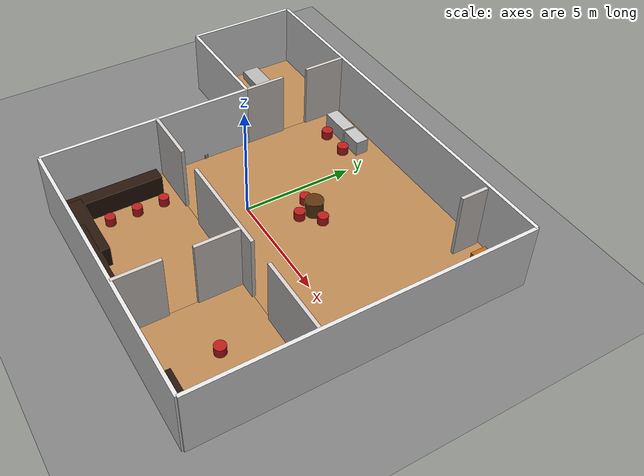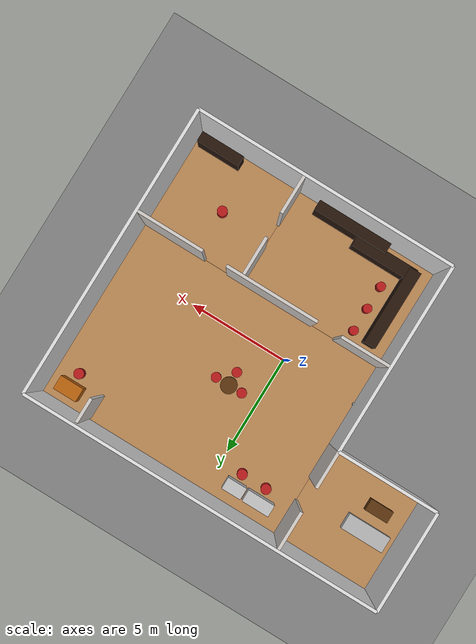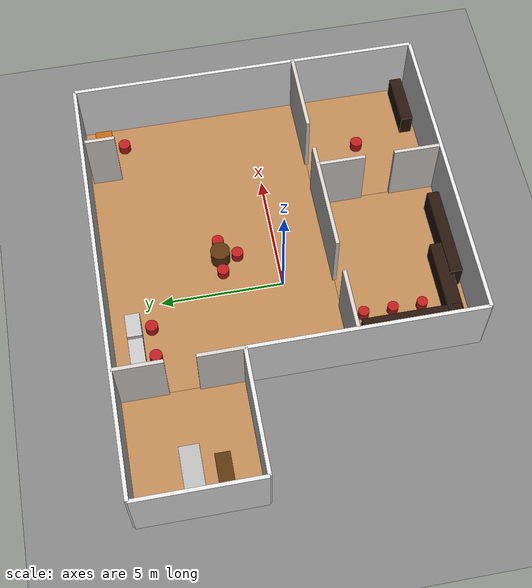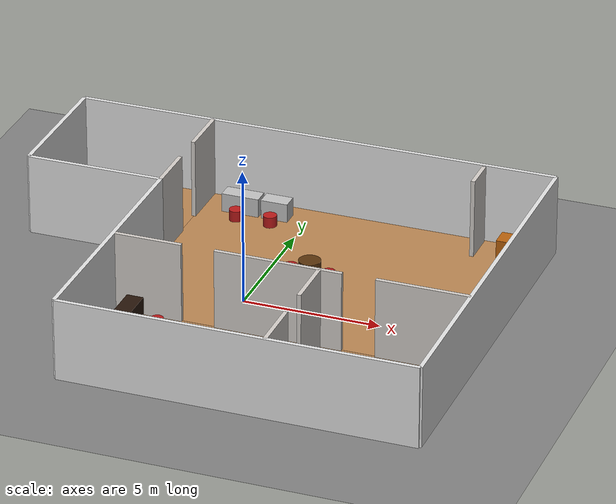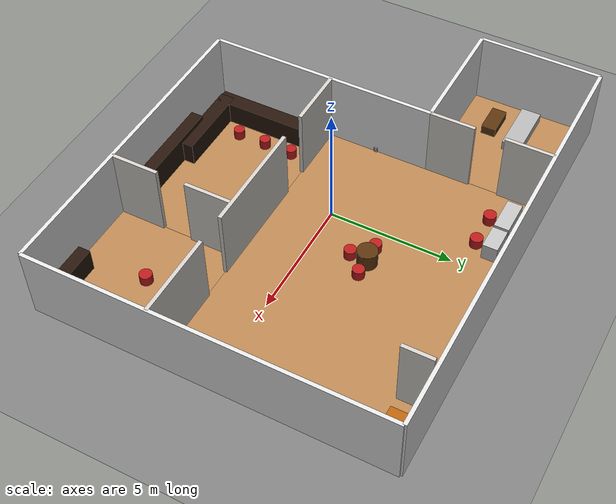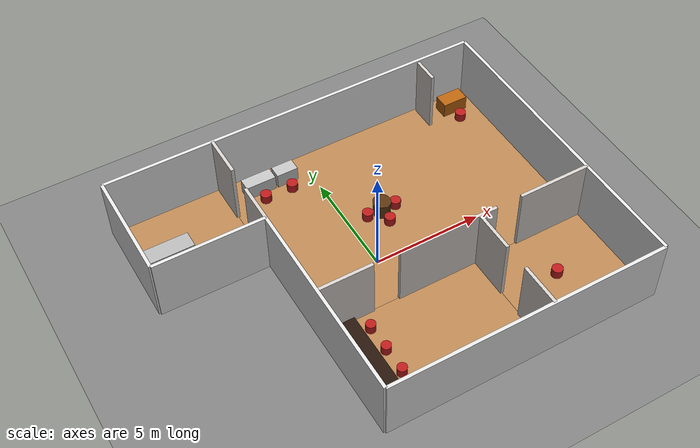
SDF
<?xml version='1.0' encoding='utf-8'?>
<sdf version="1.6">
  <world name="office_building">

    <physics name="1ms" type="ignored">
      <max_step_size>0.005</max_step_size>
      <real_time_factor>1.0</real_time_factor>
      <real_time_update_rate>200</real_time_update_rate>
    </physics>

    <plugin name="gz::sim::systems::Physics" filename="gz-sim-physics-system" />
    <plugin name="gz::sim::systems::UserCommands" filename="gz-sim-user-commands-system" />
    <plugin name="gz::sim::systems::SceneBroadcaster" filename="gz-sim-scene-broadcaster-system" />
    <plugin name="gz::sim::systems::Sensors" filename="gz-sim-sensors-system">
      <render_engine>ogre2</render_engine>
    </plugin>
    <plugin name="gz::sim::systems::Imu" filename="gz-sim-imu-system" />
    <gravity>0 0 -9.8</gravity>

    <light name="sun" type="directional">
      <cast_shadows>true</cast_shadows>
      <pose>0 0 10 0 -0.5 0.1</pose>
      <diffuse>0.9 0.9 0.9 1</diffuse>
      <specular>0.2 0.2 0.2 1</specular>
      <attenuation>
        <range>1000</range>
        <constant>0.9</constant>
        <linear>0.01</linear>
        <quadratic>0.001</quadratic>
      </attenuation>
      <direction>-0.5 0.5 -1</direction>
    </light>

    <scene>
      <ambient>0.4 0.4 0.4 1</ambient>
      <background>0.72 0.78 0.86 1</background>
      <shadows>true</shadows>
    </scene>

    <model name="ground_plane">
      <static>true</static>
      <pose>0 0 0 0 0 0</pose>
      <link name="link">
        <collision name="collision">
          <geometry>
            <plane>
              <normal>0 0 1</normal>
              <size>50 50</size>
            </plane>
          </geometry>
        </collision>
        <visual name="visual">
          <geometry>
            <plane>
              <normal>0 0 1</normal>
              <size>50 50</size>
            </plane>
          </geometry>
          <material>
            <ambient>0.5 0.5 0.5 1</ambient>
            <diffuse>0.5 0.5 0.5 1</diffuse>
          </material>
        </visual>
      </link>
    </model>

    <model name="floor_main_hall">
      <static>true</static>
      <pose> 2.5000 2.5500 0.025 0 0 0 </pose>
      <link name="link">
        <collision name="collision">
          <geometry>
            <box>
              <size>12.85 9.27 0.05</size>
            </box>
          </geometry>
        </collision>
        <visual name="visual">
          <geometry>
            <box>
              <size>12.85 9.27 0.05</size>
            </box>
          </geometry>
          <material>
            <ambient>0.72 0.52 0.32 1</ambient>
            <diffuse>0.72 0.52 0.32 1</diffuse>
          </material>
        </visual>
      </link>
    </model>

    <model name="floor_left_room">
      <static>true</static>
      <pose> -6.4250 4.6850 0.025 0 0 0 </pose>
      <link name="link">
        <collision name="collision">
          <geometry>
            <box>
              <size>5.0 5.0 0.05</size>
            </box>
          </geometry>
        </collision>
        <visual name="visual">
          <geometry>
            <box>
              <size>5.0 5.0 0.05</size>
            </box>
          </geometry>
          <material>
            <ambient>0.72 0.52 0.32 1</ambient>
            <diffuse>0.72 0.52 0.32 1</diffuse>
          </material>
        </visual>
      </link>
    </model>

    <model name="floor_lower_left">
      <static>true</static>
      <pose> -0.1850 -4.6350 0.025 0 0 0 </pose>
      <link name="link">
        <collision name="collision">
          <geometry>
            <box>
              <size>7.48 5.1 0.05</size>
            </box>
          </geometry>
        </collision>
        <visual name="visual">
          <geometry>
            <box>
              <size>7.48 5.1 0.05</size>
            </box>
          </geometry>
          <material>
            <ambient>0.72 0.52 0.32 1</ambient>
            <diffuse>0.72 0.52 0.32 1</diffuse>
          </material>
        </visual>
      </link>
    </model>

    <model name="floor_lower_right">
      <static>true</static>
      <pose> 6.2400 -4.6350 0.025 0 0 0 </pose>
      <link name="link">
        <collision name="collision">
          <geometry>
            <box>
              <size>5.37 5.1 0.05</size>
            </box>
          </geometry>
        </collision>
        <visual name="visual">
          <geometry>
            <box>
              <size>5.37 5.1 0.05</size>
            </box>
          </geometry>
          <material>
            <ambient>0.72 0.52 0.32 1</ambient>
            <diffuse>0.72 0.52 0.32 1</diffuse>
          </material>
        </visual>
      </link>
    </model>

    <model name="wall_outer_north">
      <static>true</static>
      <pose> 0.0000 7.1850 1.5 0 0 0 </pose>
      <link name="link">
        <collision name="collision">
          <geometry>
            <box>
              <size>17.85 0.15 3.0</size>
            </box>
          </geometry>
        </collision>
        <visual name="visual">
          <geometry>
            <box>
              <size>17.85 0.15 3.0</size>
            </box>
          </geometry>
          <material>
            <ambient>0.88 0.88 0.88 1</ambient>
            <diffuse>0.88 0.88 0.88 1</diffuse>
          </material>
        </visual>
      </link>
    </model>

    <model name="wall_outer_east">
      <static>true</static>
      <pose> 8.9250 0.0000 1.5 0 0 0 </pose>
      <link name="link">
        <collision name="collision">
          <geometry>
            <box>
              <size>0.15 14.37 3.0</size>
            </box>
          </geometry>
        </collision>
        <visual name="visual">
          <geometry>
            <box>
              <size>0.15 14.37 3.0</size>
            </box>
          </geometry>
          <material>
            <ambient>0.88 0.88 0.88 1</ambient>
            <diffuse>0.88 0.88 0.88 1</diffuse>
          </material>
        </visual>
      </link>
    </model>

    <model name="wall_outer_south">
      <static>true</static>
      <pose> 2.5000 -7.1850 1.5 0 0 0 </pose>
      <link name="link">
        <collision name="collision">
          <geometry>
            <box>
              <size>12.85 0.15 3.0</size>
            </box>
          </geometry>
        </collision>
        <visual name="visual">
          <geometry>
            <box>
              <size>12.85 0.15 3.0</size>
            </box>
          </geometry>
          <material>
            <ambient>0.88 0.88 0.88 1</ambient>
            <diffuse>0.88 0.88 0.88 1</diffuse>
          </material>
        </visual>
      </link>
    </model>

    <model name="wall_outer_west_left_room">
      <static>true</static>
      <pose> -8.9250 4.6850 1.5 0 0 0 </pose>
      <link name="link">
        <collision name="collision">
          <geometry>
            <box>
              <size>0.15 5.0 3.0</size>
            </box>
          </geometry>
        </collision>
        <visual name="visual">
          <geometry>
            <box>
              <size>0.15 5.0 3.0</size>
            </box>
          </geometry>
          <material>
            <ambient>0.88 0.88 0.88 1</ambient>
            <diffuse>0.88 0.88 0.88 1</diffuse>
          </material>
        </visual>
      </link>
    </model>

    <model name="wall_outer_south_left_room">
      <static>true</static>
      <pose> -6.4250 2.1850 1.5 0 0 0 </pose>
      <link name="link">
        <collision name="collision">
          <geometry>
            <box>
              <size>5.0 0.15 3.0</size>
            </box>
          </geometry>
        </collision>
        <visual name="visual">
          <geometry>
            <box>
              <size>5.0 0.15 3.0</size>
            </box>
          </geometry>
          <material>
            <ambient>0.88 0.88 0.88 1</ambient>
            <diffuse>0.88 0.88 0.88 1</diffuse>
          </material>
        </visual>
      </link>
    </model>

    <model name="wall_outer_west_main">
      <static>true</static>
      <pose> -3.9250 -2.5000 1.5 0 0 0 </pose>
      <link name="link">
        <collision name="collision">
          <geometry>
            <box>
              <size>0.15 9.37 3.0</size>
            </box>
          </geometry>
        </collision>
        <visual name="visual">
          <geometry>
            <box>
              <size>0.15 9.37 3.0</size>
            </box>
          </geometry>
          <material>
            <ambient>0.88 0.88 0.88 1</ambient>
            <diffuse>0.88 0.88 0.88 1</diffuse>
          </material>
        </visual>
      </link>
    </model>

    <model name="wall_int_left_room_A">
      <static>true</static>
      <pose> -3.9250 3.1000 1.5 0 0 0 </pose>
      <link name="link">
        <collision name="collision">
          <geometry>
            <box>
              <size>0.15 1.83 3.0</size>
            </box>
          </geometry>
        </collision>
        <visual name="visual">
          <geometry>
            <box>
              <size>0.15 1.83 3.0</size>
            </box>
          </geometry>
          <material>
            <ambient>0.82 0.80 0.78 1</ambient>
            <diffuse>0.82 0.80 0.78 1</diffuse>
          </material>
        </visual>
      </link>
    </model>

    <model name="wall_int_left_room_B">
      <static>true</static>
      <pose> -3.9250 6.2000 1.5 0 0 0 </pose>
      <link name="link">
        <collision name="collision">
          <geometry>
            <box>
              <size>0.15 1.97 3.0</size>
            </box>
          </geometry>
        </collision>
        <visual name="visual">
          <geometry>
            <box>
              <size>0.15 1.97 3.0</size>
            </box>
          </geometry>
          <material>
            <ambient>0.82 0.80 0.78 1</ambient>
            <diffuse>0.82 0.80 0.78 1</diffuse>
          </material>
        </visual>
      </link>
    </model>

    <model name="wall_int_lower_seg1">
      <static>true</static>
      <pose> -2.6750 -2.0850 1.5 0 0 0 </pose>
      <link name="link">
        <collision name="collision">
          <geometry>
            <box>
              <size>2.5 0.15 3.0</size>
            </box>
          </geometry>
        </collision>
        <visual name="visual">
          <geometry>
            <box>
              <size>2.5 0.15 3.0</size>
            </box>
          </geometry>
          <material>
            <ambient>0.82 0.80 0.78 1</ambient>
            <diffuse>0.82 0.80 0.78 1</diffuse>
          </material>
        </visual>
      </link>
    </model>

    <model name="wall_int_lower_seg2">
      <static>true</static>
      <pose> 2.0750 -2.0850 1.5 0 0 0 </pose>
      <link name="link">
        <collision name="collision">
          <geometry>
            <box>
              <size>4.6 0.15 3.0</size>
            </box>
          </geometry>
        </collision>
        <visual name="visual">
          <geometry>
            <box>
              <size>4.6 0.15 3.0</size>
            </box>
          </geometry>
          <material>
            <ambient>0.82 0.80 0.78 1</ambient>
            <diffuse>0.82 0.80 0.78 1</diffuse>
          </material>
        </visual>
      </link>
    </model>

    <model name="wall_int_lower_seg3">
      <static>true</static>
      <pose> 7.2500 -2.0850 1.5 0 0 0 </pose>
      <link name="link">
        <collision name="collision">
          <geometry>
            <box>
              <size>3.35 0.15 3.0</size>
            </box>
          </geometry>
        </collision>
        <visual name="visual">
          <geometry>
            <box>
              <size>3.35 0.15 3.0</size>
            </box>
          </geometry>
          <material>
            <ambient>0.82 0.80 0.78 1</ambient>
            <diffuse>0.82 0.80 0.78 1</diffuse>
          </material>
        </visual>
      </link>
    </model>

    <model name="wall_int_lower_divider_A">
      <static>true</static>
      <pose> 3.5550 -6.2100 1.5 0 0 0 </pose>
      <link name="link">
        <collision name="collision">
          <geometry>
            <box>
              <size>0.15 1.95 3.0</size>
            </box>
          </geometry>
        </collision>
        <visual name="visual">
          <geometry>
            <box>
              <size>0.15 1.95 3.0</size>
            </box>
          </geometry>
          <material>
            <ambient>0.82 0.80 0.78 1</ambient>
            <diffuse>0.82 0.80 0.78 1</diffuse>
          </material>
        </visual>
      </link>
    </model>

    <model name="wall_int_lower_divider_B">
      <static>true</static>
      <pose> 3.5550 -3.0600 1.5 0 0 0 </pose>
      <link name="link">
        <collision name="collision">
          <geometry>
            <box>
              <size>0.15 1.95 3.0</size>
            </box>
          </geometry>
        </collision>
        <visual name="visual">
          <geometry>
            <box>
              <size>0.15 1.95 3.0</size>
            </box>
          </geometry>
          <material>
            <ambient>0.82 0.80 0.78 1</ambient>
            <diffuse>0.82 0.80 0.78 1</diffuse>
          </material>
        </visual>
      </link>
    </model>

    <model name="wall_int_right_office">
      <static>true</static>
      <pose> 6.3250 6.4250 1.5 0 0 0 </pose>
      <link name="link">
        <collision name="collision">
          <geometry>
            <box>
              <size>0.15 1.22 3.0</size>
            </box>
          </geometry>
        </collision>
        <visual name="visual">
          <geometry>
            <box>
              <size>0.15 1.22 3.0</size>
            </box>
          </geometry>
          <material>
            <ambient>0.82 0.80 0.78 1</ambient>
            <diffuse>0.82 0.80 0.78 1</diffuse>
          </material>
        </visual>
      </link>
    </model>

    <model name="desk_reception">
      <static>true</static>

      <pose> -2.4250 6.2150 0.38 0 0 0 </pose>
      <link name="link">
        <collision name="collision">
          <geometry>
            <box>
              <size>1.4 0.6 0.75</size>
            </box>
          </geometry>
        </collision>
        <visual name="visual">
          <geometry>
            <box>
              <size>1.4 0.6 0.75</size>
            </box>
          </geometry>
          <material>
            <ambient>0.75 0.75 0.75 1</ambient>
            <diffuse>0.75 0.75 0.75 1</diffuse>
          </material>
        </visual>
      </link>
    </model>

    <model name="chair_reception">
      <static>true</static>
      <pose> -2.4250 5.5150 0.23 0 0 0 </pose>
      <link name="link">
        <collision name="collision">
          <geometry>
            <cylinder>
              <radius>0.25</radius>
              <length>0.45</length>
            </cylinder>
          </geometry>
        </collision>
        <visual name="visual">
          <geometry>
            <cylinder>
              <radius>0.25</radius>
              <length>0.45</length>
            </cylinder>
          </geometry>
          <material>
            <ambient>0.72 0.1 0.1 1</ambient>
            <diffuse>0.72 0.1 0.1 1</diffuse>
          </material>
        </visual>
      </link>
    </model>

    <model name="desk_reception2">
      <static>true</static>
      <pose> -1.1250 6.2150 0.38 0 0 0 </pose>
      <link name="link">
        <collision name="collision">
          <geometry>
            <box>
              <size>1.0 0.6 0.75</size>
            </box>
          </geometry>
        </collision>
        <visual name="visual">
          <geometry>
            <box>
              <size>1.0 0.6 0.75</size>
            </box>
          </geometry>
          <material>
            <ambient>0.75 0.75 0.75 1</ambient>
            <diffuse>0.75 0.75 0.75 1</diffuse>
          </material>
        </visual>
      </link>
    </model>

    <model name="chair_desk2">
      <static>true</static>
      <pose> -1.1250 5.5150 0.23 0 0 0 </pose>
      <link name="link">
        <collision name="collision">
          <geometry>
            <cylinder>
              <radius>0.25</radius>
              <length>0.45</length>
            </cylinder>
          </geometry>
        </collision>
        <visual name="visual">
          <geometry>
            <cylinder>
              <radius>0.25</radius>
              <length>0.45</length>
            </cylinder>
          </geometry>
          <material>
            <ambient>0.72 0.1 0.1 1</ambient>
            <diffuse>0.72 0.1 0.1 1</diffuse>
          </material>
        </visual>
      </link>
    </model>

    <model name="table_round_main">
      <static>true</static>
      <pose> 1.5750 2.3150 0.38 0 0 0 </pose>
      <link name="link">
        <collision name="collision">
          <geometry>
            <cylinder>
              <radius>0.4</radius>
              <length>0.75</length>
            </cylinder>
          </geometry>
        </collision>
        <visual name="visual">
          <geometry>
            <cylinder>
              <radius>0.4</radius>
              <length>0.75</length>
            </cylinder>
          </geometry>
          <material>
            <ambient>0.35 0.2 0.05 1</ambient>
            <diffuse>0.35 0.2 0.05 1</diffuse>
          </material>
        </visual>
      </link>
    </model>

    <model name="chair_round1">
      <static>true</static>
      <pose> 0.8750 2.3150 0.23 0 0 0 </pose>
      <link name="link">
        <collision name="collision">
          <geometry>
            <cylinder>
              <radius>0.24</radius>
              <length>0.45</length>
            </cylinder>
          </geometry>
        </collision>
        <visual name="visual">
          <geometry>
            <cylinder>
              <radius>0.24</radius>
              <length>0.45</length>
            </cylinder>
          </geometry>
          <material>
            <ambient>0.72 0.1 0.1 1</ambient>
            <diffuse>0.72 0.1 0.1 1</diffuse>
          </material>
        </visual>
      </link>
    </model>

    <model name="chair_round2">
      <static>true</static>
      <pose> 2.2750 2.3150 0.23 0 0 0 </pose>
      <link name="link">
        <collision name="collision">
          <geometry>
            <cylinder>
              <radius>0.24</radius>
              <length>0.45</length>
            </cylinder>
          </geometry>
        </collision>
        <visual name="visual">
          <geometry>
            <cylinder>
              <radius>0.24</radius>
              <length>0.45</length>
            </cylinder>
          </geometry>
          <material>
            <ambient>0.72 0.1 0.1 1</ambient>
            <diffuse>0.72 0.1 0.1 1</diffuse>
          </material>
        </visual>
      </link>
    </model>

    <model name="chair_round3">
      <static>true</static>
      <pose> 1.5750 1.6150 0.23 0 0 0 </pose>
      <link name="link">
        <collision name="collision">
          <geometry>
            <cylinder>
              <radius>0.24</radius>
              <length>0.45</length>
            </cylinder>
          </geometry>
        </collision>
        <visual name="visual">
          <geometry>
            <cylinder>
              <radius>0.24</radius>
              <length>0.45</length>
            </cylinder>
          </geometry>
          <material>
            <ambient>0.72 0.1 0.1 1</ambient>
            <diffuse>0.72 0.1 0.1 1</diffuse>
          </material>
        </visual>
      </link>
    </model>

    <model name="desk_manager">
      <static>true</static>
      <pose> 7.7750 6.3150 0.38 0 0 0 </pose>
      <link name="link">
        <collision name="collision">
          <geometry>
            <box>
              <size>1.2 0.7 0.75</size>
            </box>
          </geometry>
        </collision>
        <visual name="visual">
          <geometry>
            <box>
              <size>1.2 0.7 0.75</size>
            </box>
          </geometry>
          <material>
            <ambient>0.72 0.38 0.05 1</ambient>
            <diffuse>0.72 0.38 0.05 1</diffuse>
          </material>
        </visual>
      </link>
    </model>

    <model name="chair_manager">
      <static>true</static>
      <pose> 7.7750 5.5150 0.23 0 0 0 </pose>
      <link name="link">
        <collision name="collision">
          <geometry>
            <cylinder>
              <radius>0.25</radius>
              <length>0.45</length>
            </cylinder>
          </geometry>
        </collision>
        <visual name="visual">
          <geometry>
            <cylinder>
              <radius>0.25</radius>
              <length>0.45</length>
            </cylinder>
          </geometry>
          <material>
            <ambient>0.72 0.1 0.1 1</ambient>
            <diffuse>0.72 0.1 0.1 1</diffuse>
          </material>
        </visual>
      </link>
    </model>

    <model name="bar_counter_long">
      <static>true</static>

      <pose> -2.9250 -4.6350 0.5 0 0 0 </pose>
      <link name="link">
        <collision name="collision">
          <geometry>
            <box>
              <size>0.6 4.0 1.0</size>
            </box>
          </geometry>
        </collision>
        <visual name="visual">
          <geometry>
            <box>
              <size>0.6 4.0 1.0</size>
            </box>
          </geometry>
          <material>
            <ambient>0.15 0.08 0.04 1</ambient>
            <diffuse>0.15 0.08 0.04 1</diffuse>
          </material>
        </visual>
      </link>
    </model>

    <model name="bar_counter_short">
      <static>true</static>

      <pose> -1.4250 -6.3850 0.5 0 0 0 </pose>
      <link name="link">
        <collision name="collision">
          <geometry>
            <box>
              <size>3.2 0.6 1.0</size>
            </box>
          </geometry>
        </collision>
        <visual name="visual">
          <geometry>
            <box>
              <size>3.2 0.6 1.0</size>
            </box>
          </geometry>
          <material>
            <ambient>0.15 0.08 0.04 1</ambient>
            <diffuse>0.15 0.08 0.04 1</diffuse>
          </material>
        </visual>
      </link>
    </model>

    <model name="stool_bar1">
      <static>true</static>
      <pose> -2.0250 -2.8850 0.23 0 0 0 </pose>
      <link name="link">
        <collision name="collision">
          <geometry>
            <cylinder>
              <radius>0.22</radius>
              <length>0.45</length>
            </cylinder>
          </geometry>
        </collision>
        <visual name="visual">
          <geometry>
            <cylinder>
              <radius>0.22</radius>
              <length>0.45</length>
            </cylinder>
          </geometry>
          <material>
            <ambient>0.72 0.1 0.1 1</ambient>
            <diffuse>0.72 0.1 0.1 1</diffuse>
          </material>
        </visual>
      </link>
    </model>

    <model name="stool_bar2">
      <static>true</static>
      <pose> -2.0250 -4.0850 0.23 0 0 0 </pose>
      <link name="link">
        <collision name="collision">
          <geometry>
            <cylinder>
              <radius>0.22</radius>
              <length>0.45</length>
            </cylinder>
          </geometry>
        </collision>
        <visual name="visual">
          <geometry>
            <cylinder>
              <radius>0.22</radius>
              <length>0.45</length>
            </cylinder>
          </geometry>
          <material>
            <ambient>0.72 0.1 0.1 1</ambient>
            <diffuse>0.72 0.1 0.1 1</diffuse>
          </material>
        </visual>
      </link>
    </model>

    <model name="stool_bar3">
      <static>true</static>
      <pose> -2.0250 -5.2850 0.23 0 0 0 </pose>
      <link name="link">
        <collision name="collision">
          <geometry>
            <cylinder>
              <radius>0.22</radius>
              <length>0.45</length>
            </cylinder>
          </geometry>
        </collision>
        <visual name="visual">
          <geometry>
            <cylinder>
              <radius>0.22</radius>
              <length>0.45</length>
            </cylinder>
          </geometry>
          <material>
            <ambient>0.72 0.1 0.1 1</ambient>
            <diffuse>0.72 0.1 0.1 1</diffuse>
          </material>
        </visual>
      </link>
    </model>

    <model name="shelving_bar">
      <static>true</static>
      <pose> 0.5750 -6.7850 0.6 0 0 0 </pose>
      <link name="link">
        <collision name="collision">
          <geometry>
            <box>
              <size>3.8 0.5 1.2</size>
            </box>
          </geometry>
        </collision>
        <visual name="visual">
          <geometry>
            <box>
              <size>3.8 0.5 1.2</size>
            </box>
          </geometry>
          <material>
            <ambient>0.15 0.08 0.04 1</ambient>
            <diffuse>0.15 0.08 0.04 1</diffuse>
          </material>
        </visual>
      </link>
    </model>

    <model name="cabinet_lower_right">
      <static>true</static>
      <pose> 7.5750 -6.6850 0.5 0 0 0 </pose>
      <link name="link">
        <collision name="collision">
          <geometry>
            <box>
              <size>2.2 0.5 1.0</size>
            </box>
          </geometry>
        </collision>
        <visual name="visual">
          <geometry>
            <box>
              <size>2.2 0.5 1.0</size>
            </box>
          </geometry>
          <material>
            <ambient>0.15 0.08 0.04 1</ambient>
            <diffuse>0.15 0.08 0.04 1</diffuse>
          </material>
        </visual>
      </link>
    </model>

    <model name="chair_lower_right">
      <static>true</static>
      <pose> 6.0750 -4.3850 0.23 0 0 0 </pose>
      <link name="link">
        <collision name="collision">
          <geometry>
            <cylinder>
              <radius>0.25</radius>
              <length>0.45</length>
            </cylinder>
          </geometry>
        </collision>
        <visual name="visual">
          <geometry>
            <cylinder>
              <radius>0.25</radius>
              <length>0.45</length>
            </cylinder>
          </geometry>
          <material>
            <ambient>0.72 0.1 0.1 1</ambient>
            <diffuse>0.72 0.1 0.1 1</diffuse>
          </material>
        </visual>
      </link>
    </model>

    <model name="sofa_left_room">
      <static>true</static>
      <pose> -7.4250 4.8150 0.23 0 0 0 </pose>
      <link name="link">
        <collision name="collision">
          <geometry>
            <box>
              <size>2.2 0.8 0.45</size>
            </box>
          </geometry>
        </collision>
        <visual name="visual">
          <geometry>
            <box>
              <size>2.2 0.8 0.45</size>
            </box>
          </geometry>
          <material>
            <ambient>0.70 0.70 0.70 1</ambient>
            <diffuse>0.70 0.70 0.70 1</diffuse>
          </material>
        </visual>
      </link>
    </model>

    <model name="coffee_table_left">
      <static>true</static>
      <pose> -7.4250 3.6150 0.22 0 0 0 </pose>
      <link name="link">
        <collision name="collision">
          <geometry>
            <box>
              <size>1.2 0.6 0.44</size>
            </box>
          </geometry>
        </collision>
        <visual name="visual">
          <geometry>
            <box>
              <size>1.2 0.6 0.44</size>
            </box>
          </geometry>
          <material>
            <ambient>0.35 0.2 0.05 1</ambient>
            <diffuse>0.35 0.2 0.05 1</diffuse>
          </material>
        </visual>
      </link>
    </model>

    <model name="apriltag_dock">
      <static>true</static>
      <pose>-3.85 0 0.05 0 0 0</pose>
      <link name="body">
        <visual name="station">
          <geometry>
            <mesh>
              <uri>package://bonicbot_a2_sim/meshes/docking_station.obj</uri>
            </mesh>
          </geometry>
        </visual>
        <!-- Collision is the body's bounding box only. The pins (out to
             x = 0.08) are left visual-only so a slight overshoot in sim does
             not end as a physics shove against a 10 mm pin. -->
        <collision name="station">
          <pose>0.025 0 0.10625 0 0 0</pose>
          <geometry>
            <box>
              <size>0.05 0.16 0.2125</size>
            </box>
          </geometry>
        </collision>

        <visual name="tag_plate">
          <pose>0.0495 0 0.1475 0 0 0</pose>
          <geometry>
            <mesh>
              <uri>package://bonicbot_a2_sim/meshes/apriltag_plate.obj</uri>
            </mesh>
          </geometry>
        </visual>
      </link>
    </model>

  </world>
</sdf>
